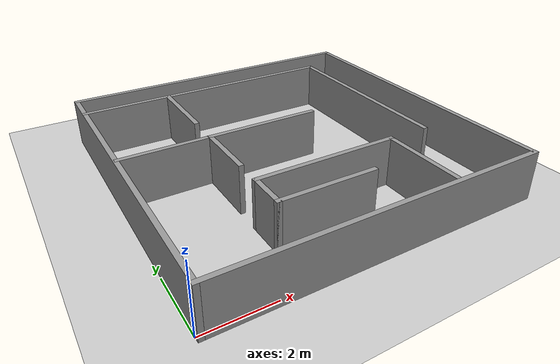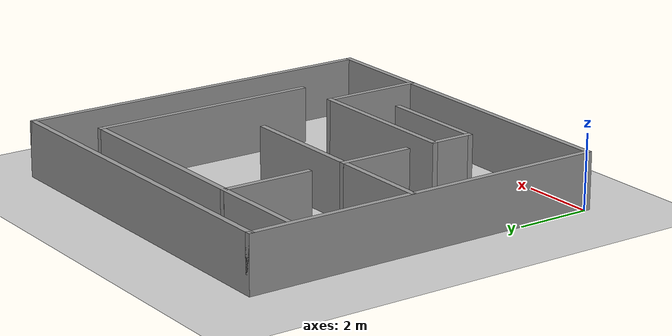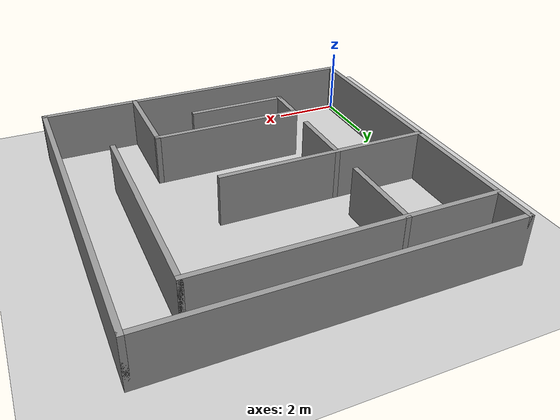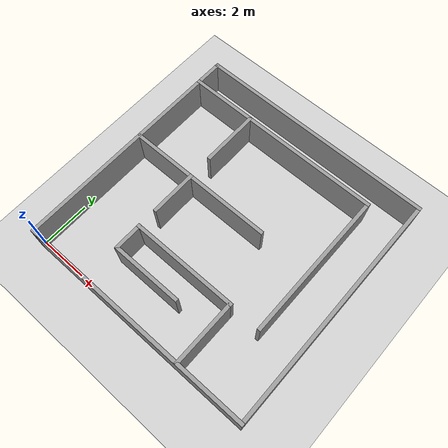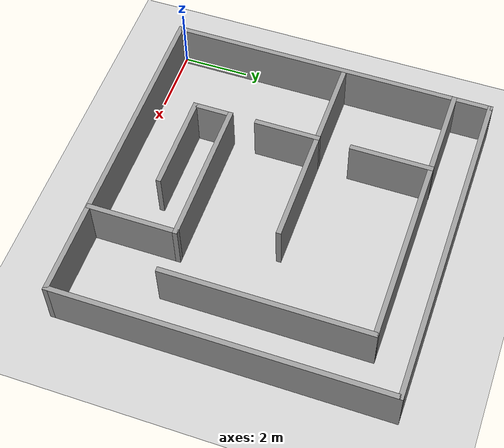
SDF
<?xml version="1.0"?>
<sdf version="1.6">
  <world name="default">

    <plugin
      filename="gz-sim-physics-system"
      name="gz::sim::systems::Physics">
    </plugin>
    <plugin
      filename="gz-sim-user-commands-system"
      name="gz::sim::systems::UserCommands">
    </plugin>
    <plugin
      filename="gz-sim-scene-broadcaster-system"
      name="gz::sim::systems::SceneBroadcaster">
    </plugin>
    <plugin
      filename="gz-sim-sensors-system"
      name="gz::sim::systems::Sensors">
      <render_engine>ogre2</render_engine>
    </plugin>
    <plugin
      filename="gz-sim-imu-system"
      name="gz::sim::systems::Imu">
    </plugin>
    <include>
      <uri>
        https://fuel.gazebosim.org/1.0/OpenRobotics/models/Ground Plane
      </uri>
    </include>

    <include>
      <uri>
        https://fuel.gazebosim.org/1.0/OpenRobotics/models/Sun
      </uri>
    </include>
    <gui fullscreen='0'>
      <camera name='user_camera'>
        <pose frame=''>0.319654 -0.235002 9.29441 0 1.5138 0.009599</pose>
        <view_controller>orbit</view_controller>
        <projection_type>perspective</projection_type>
      </camera>
      <plugin filename="MinimalScene" name="3D View">
        <gz-gui>
          <title>3D View</title>
          <property type="bool" key="showTitleBar">false</property>
          <property type="string" key="state">docked</property>
        </gz-gui>

        <engine>ogre2</engine>
        <scene>scene</scene>
        <ambient_light>0.4 0.4 0.4</ambient_light>
        <background_color>0.8 0.8 0.8</background_color>
        <camera_pose>0.319654 -0.235002 9.29441 0 1.5138 0.009599</camera_pose>
      </plugin>

      <plugin filename="EntityContextMenuPlugin" name="Entity context menu">
        <gz-gui>
          <property key="state" type="string">floating</property>
          <property key="width" type="double">5</property>
          <property key="height" type="double">5</property>
          <property key="showTitleBar" type="bool">false</property>
        </gz-gui>
      </plugin>
      <plugin filename="GzSceneManager" name="Scene Manager">
        <gz-gui>
          <property key="resizable" type="bool">false</property>
          <property key="width" type="double">5</property>
          <property key="height" type="double">5</property>
          <property key="state" type="string">floating</property>
          <property key="showTitleBar" type="bool">false</property>
        </gz-gui>
      </plugin>
      <plugin filename="InteractiveViewControl" name="Interactive view control">
        <gz-gui>
          <property key="resizable" type="bool">false</property>
          <property key="width" type="double">5</property>
          <property key="height" type="double">5</property>
          <property key="state" type="string">floating</property>
          <property key="showTitleBar" type="bool">false</property>
        </gz-gui>
      </plugin>
      <plugin filename="CameraTracking" name="Camera Tracking">
        <gz-gui>
          <property key="resizable" type="bool">false</property>
          <property key="width" type="double">5</property>
          <property key="height" type="double">5</property>
          <property key="state" type="string">floating</property>
          <property key="showTitleBar" type="bool">false</property>
        </gz-gui>
      </plugin>
      <plugin filename="MarkerManager" name="Marker manager">
        <gz-gui>
          <property key="resizable" type="bool">false</property>
          <property key="width" type="double">5</property>
          <property key="height" type="double">5</property>
          <property key="state" type="string">floating</property>
          <property key="showTitleBar" type="bool">false</property>
        </gz-gui>
      </plugin>
      <plugin filename="SelectEntities" name="Select Entities">
        <gz-gui>
          <property key="resizable" type="bool">false</property>
          <property key="width" type="double">5</property>
          <property key="height" type="double">5</property>
          <property key="state" type="string">floating</property>
          <property key="showTitleBar" type="bool">false</property>
        </gz-gui>
      </plugin>

      <plugin filename="Spawn" name="Spawn Entities">
        <gz-gui>
          <property key="resizable" type="bool">false</property>
          <property key="width" type="double">5</property>
          <property key="height" type="double">5</property>
          <property key="state" type="string">floating</property>
          <property key="showTitleBar" type="bool">false</property>
        </gz-gui>
      </plugin>

      <plugin filename="VisualizationCapabilities" name="Visualization Capabilities">
        <gz-gui>
          <property key="resizable" type="bool">false</property>
          <property key="width" type="double">5</property>
          <property key="height" type="double">5</property>
          <property key="state" type="string">floating</property>
          <property key="showTitleBar" type="bool">false</property>
        </gz-gui>
      </plugin>

      <!-- World control -->
      <plugin filename="WorldControl" name="World control">
        <gz-gui>
          <title>World control</title>
          <property type="bool" key="showTitleBar">false</property>
          <property type="bool" key="resizable">false</property>
          <property type="double" key="height">72</property>
          <property type="double" key="z">1</property>

          <property type="string" key="state">floating</property>
          <anchors target="3D View">
            <line own="left" target="left"/>
            <line own="bottom" target="bottom"/>
          </anchors>
        </gz-gui>

        <play_pause>true</play_pause>
        <step>true</step>
        <start_paused>true</start_paused>
        <use_event>true</use_event>

      </plugin>

      <!-- World statistics -->
      <plugin filename="WorldStats" name="World stats">
        <gz-gui>
          <title>World stats</title>
          <property type="bool" key="showTitleBar">false</property>
          <property type="bool" key="resizable">false</property>
          <property type="double" key="height">110</property>
          <property type="double" key="width">290</property>
          <property type="double" key="z">1</property>

          <property type="string" key="state">floating</property>
          <anchors target="3D View">
            <line own="right" target="right"/>
            <line own="bottom" target="bottom"/>
          </anchors>
        </gz-gui>

        <sim_time>true</sim_time>
        <real_time>true</real_time>
        <real_time_factor>true</real_time_factor>
        <iterations>true</iterations>
      </plugin>

      <!-- Insert simple shapes -->
      <plugin filename="Shapes" name="Shapes">
        <gz-gui>
          <property key="resizable" type="bool">false</property>
          <property key="x" type="double">0</property>
          <property key="y" type="double">0</property>
          <property key="width" type="double">250</property>
          <property key="height" type="double">50</property>
          <property key="state" type="string">floating</property>
          <property key="showTitleBar" type="bool">false</property>
          <property key="cardBackground" type="string">#666666</property>
        </gz-gui>
      </plugin>

      <!-- Insert lights -->
      <plugin filename="Lights" name="Lights">
        <gz-gui>
          <property key="resizable" type="bool">false</property>
          <property key="x" type="double">250</property>
          <property key="y" type="double">0</property>
          <property key="width" type="double">150</property>
          <property key="height" type="double">50</property>
          <property key="state" type="string">floating</property>
          <property key="showTitleBar" type="bool">false</property>
          <property key="cardBackground" type="string">#666666</property>
        </gz-gui>
      </plugin>

      <!-- Translate / rotate -->
      <plugin filename="TransformControl" name="Transform control">
        <gz-gui>
          <property key="resizable" type="bool">false</property>
          <property key="x" type="double">0</property>
          <property key="y" type="double">50</property>
          <property key="width" type="double">250</property>
          <property key="height" type="double">50</property>
          <property key="state" type="string">floating</property>
          <property key="showTitleBar" type="bool">false</property>
          <property key="cardBackground" type="string">#777777</property>
        </gz-gui>
      </plugin>

      <!-- Screenshot -->
      <plugin filename="Screenshot" name="Screenshot">
        <gz-gui>
          <property key="resizable" type="bool">false</property>
          <property key="x" type="double">250</property>
          <property key="y" type="double">50</property>
          <property key="width" type="double">50</property>
          <property key="height" type="double">50</property>
          <property key="state" type="string">floating</property>
          <property key="showTitleBar" type="bool">false</property>
          <property key="cardBackground" type="string">#777777</property>
        </gz-gui>
      </plugin>

      <!-- Copy/Paste -->
      <plugin filename="CopyPaste" name="CopyPaste">
        <gz-gui>
          <property key="resizable" type="bool">false</property>
          <property key="x" type="double">300</property>
          <property key="y" type="double">50</property>
          <property key="width" type="double">100</property>
          <property key="height" type="double">50</property>
          <property key="state" type="string">floating</property>
          <property key="showTitleBar" type="bool">false</property>
          <property key="cardBackground" type="string">#777777</property>
        </gz-gui>
      </plugin>

      <!-- Inspector -->
      <plugin filename="ComponentInspector" name="Component inspector">
        <gz-gui>
          <property type="bool" key="showTitleBar">false</property>
          <property type="string" key="state">docked</property>
        </gz-gui>
      </plugin>

      <!-- Entity tree -->
      <plugin filename="EntityTree" name="Entity tree">
        <gz-gui>
          <property type="bool" key="showTitleBar">false</property>
          <property type="string" key="state">docked</property>
        </gz-gui>
      </plugin>
    </gui>

    <physics type="ode">
      <real_time_update_rate>1000.0</real_time_update_rate>
      <max_step_size>0.001</max_step_size>
      <real_time_factor>1</real_time_factor>
      <ode>
        <solver>
          <type>quick</type>
          <iters>150</iters>
          <precon_iters>0</precon_iters>
          <sor>1.400000</sor>
          <use_dynamic_moi_rescaling>1</use_dynamic_moi_rescaling>
        </solver>
        <constraints>
          <cfm>0.00001</cfm>
          <erp>0.2</erp>
          <contact_max_correcting_vel>2000.000000</contact_max_correcting_vel>
          <contact_surface_layer>0.01000</contact_surface_layer>
        </constraints>
      </ode>
    </physics>

    <model name='RoomWorld'>
    <pose>5.0 5.0 0 0 -0 0</pose>
    <link name='Wall_11'>
      <collision name='Wall_11_Collision'>
        <geometry>
          <box>
            <size>8.5 0.15 1.5</size>
          </box>
        </geometry>
        <pose>0 0 0.75 0 -0 0</pose>
      </collision>
      <visual name='Wall_11_Visual'>
        <pose>0 0 0.75 0 -0 0</pose>
        <geometry>
          <box>
            <size>8.5 0.15 1.5</size>
          </box>
        </geometry>
        <material>
          <script>
            <uri>file://media/materials/scripts/gazebo.material</uri>
            <name>Gazebo/Grey</name>
          </script>
          <ambient>1 1 1 1</ambient>
        </material>
        <meta>
          <layer>0</layer>
        </meta>
      </visual>
      <pose>-0.75 3.66383 0 0 -0 0</pose>
    </link>
    <link name='Wall_12'>
      <collision name='Wall_12_Collision'>
        <geometry>
          <box>
            <size>6.25 0.15 1.5</size>
          </box>
        </geometry>
        <pose>0 0 0.75 0 -0 0</pose>
      </collision>
      <visual name='Wall_12_Visual'>
        <pose>0 0 0.75 0 -0 0</pose>
        <geometry>
          <box>
            <size>6.25 0.15 1.5</size>
          </box>
        </geometry>
        <material>
          <script>
            <uri>file://media/materials/scripts/gazebo.material</uri>
            <name>Gazebo/Grey</name>
          </script>
          <ambient>1 1 1 1</ambient>
        </material>
        <meta>
          <layer>0</layer>
        </meta>
      </visual>
      <pose>3.425 0.61383 0 0 -0 -1.5708</pose>
    </link>
    <link name='Wall_14'>
      <collision name='Wall_14_Collision'>
        <geometry>
          <box>
            <size>2.75 0.15 1.5</size>
          </box>
        </geometry>
        <pose>0 0 0.75 0 -0 0</pose>
      </collision>
      <visual name='Wall_14_Visual'>
        <pose>0 0 0.75 0 -0 0</pose>
        <geometry>
          <box>
            <size>2.75 0.15 1.5</size>
          </box>
        </geometry>
        <material>
          <script>
            <uri>file://media/materials/scripts/gazebo.material</uri>
            <name>Gazebo/Grey</name>
          </script>
          <ambient>1 1 1 1</ambient>
        </material>
        <meta>
          <layer>0</layer>
        </meta>
      </visual>
      <pose>2.13606 -3.76015 0 0 -0 1.5708</pose>
    </link>
    <link name='Wall_15'>
      <collision name='Wall_15_Collision'>
        <geometry>
          <box>
            <size>4.5 0.15 1.5</size>
          </box>
        </geometry>
        <pose>0 0 0.75 0 -0 0</pose>
      </collision>
      <visual name='Wall_15_Visual'>
        <pose>0 0 0.75 0 -0 0</pose>
        <geometry>
          <box>
            <size>4.5 0.15 1.5</size>
          </box>
        </geometry>
        <material>
          <script>
            <uri>file://media/materials/scripts/gazebo.material</uri>
            <name>Gazebo/Grey</name>
          </script>
          <ambient>1 1 1 1</ambient>
        </material>
        <meta>
          <layer>0</layer>
        </meta>
      </visual>
      <pose>-0.038943 -2.46015 0 0 -0 3.14159</pose>
    </link>
        <link name='Wall_16'>
      <collision name='Wall_16_Collision'>
        <geometry>
          <box>
            <size>1.25 0.15 1.5</size>
          </box>
        </geometry>
        <pose>0 0 0.75 0 -0 0</pose>
      </collision>
      <visual name='Wall_16_Visual'>
        <pose>0 0 0.75 0 -0 0</pose>
        <geometry>
          <box>
            <size>1.25 0.15 1.5</size>
          </box>
        </geometry>
        <material>
          <script>
            <uri>file://media/materials/scripts/gazebo.material</uri>
            <name>Gazebo/Grey</name>
          </script>
          <ambient>1 1 1 1</ambient>
        </material>
        <meta>
          <layer>0</layer>
        </meta>
      </visual>
      <pose>-2.21394 -3.01015 0 0 -0 -1.5708</pose>
    </link>
    <link name='Wall_17'>
      <collision name='Wall_17_Collision'>
        <geometry>
          <box>
            <size>3 0.15 1.5</size>
          </box>
        </geometry>
        <pose>0 0 0.75 0 -0 0</pose>
      </collision>
      <visual name='Wall_17_Visual'>
        <pose>0 0 0.75 0 -0 0</pose>
        <geometry>
          <box>
            <size>3 0.15 1.5</size>
          </box>
        </geometry>
        <material>
          <script>
            <uri>file://media/materials/scripts/gazebo.material</uri>
            <name>Gazebo/Grey</name>
          </script>
          <ambient>1 1 1 1</ambient>
        </material>
        <meta>
          <layer>0</layer>
        </meta>
      </visual>
      <pose>-0.788943 -3.56015 0 0 -0 0</pose>
    </link>
    <link name='Wall_19'>
      <collision name='Wall_19_Collision'>
        <geometry>
          <box>
            <size>6.25 0.15 1.5</size>
          </box>
        </geometry>
        <pose>0 0 0.75 0 -0 0</pose>
      </collision>
      <visual name='Wall_19_Visual'>
        <pose>0 0 0.75 0 -0 0</pose>
        <geometry>
          <box>
            <size>6.25 0.15 1.5</size>
          </box>
        </geometry>
        <material>
          <script>
            <uri>file://media/materials/scripts/gazebo.material</uri>
            <name>Gazebo/Grey</name>
          </script>
          <ambient>1 1 1 1</ambient>
        </material>
        <meta>
          <layer>0</layer>
        </meta>
      </visual>
      <pose>-1.84038 0.247704 0 0 -0 0</pose>
    </link>
    <link name='Wall_21'>
      <collision name='Wall_21_Collision'>
        <geometry>
          <box>
            <size>2 0.15 1.5</size>
          </box>
        </geometry>
        <pose>0 0 0.75 0 -0 0</pose>
      </collision>
      <visual name='Wall_21_Visual'>
        <pose>0 0 0.75 0 -0 0</pose>
        <geometry>
          <box>
            <size>2 0.15 1.5</size>
          </box>
        </geometry>
        <material>
          <script>
            <uri>file://media/materials/scripts/gazebo.material</uri>
            <name>Gazebo/Grey</name>
          </script>
          <ambient>1 1 1 1</ambient>
        </material>
        <meta>
          <layer>0</layer>
        </meta>
      </visual>
      <pose>-2.21365 -0.677039 0 0 -0 -1.5708</pose>
    </link>

    <link name='Wall_23'>
      <collision name='Wall_23_Collision'>
        <geometry>
          <box>
            <size>2.5 0.15 1.5</size>
          </box>
        </geometry>
        <pose>0 0 0.75 0 -0 0</pose>
      </collision>
      <visual name='Wall_23_Visual'>
        <pose>0 0 0.75 0 -0 0</pose>
        <geometry>
          <box>
            <size>2.5 0.15 1.5</size>
          </box>
        </geometry>
        <material>
          <script>
            <uri>file://media/materials/scripts/gazebo.material</uri>
            <name>Gazebo/Grey</name>
          </script>
          <ambient>1 1 1 1</ambient>
        </material>
        <meta>
          <layer>0</layer>
        </meta>
      </visual>
      <pose>-2.21805 2.49059 0 0 -0 -1.5708</pose>
    </link>
    <link name='Wall_3'>
      <collision name='Wall_3_Collision'>
        <geometry>
          <box>
            <size>10 0.15 1.5</size>
          </box>
        </geometry>
        <pose>0 0 0.75 0 -0 0</pose>
      </collision>
      <visual name='Wall_3_Visual'>
        <pose>0 0 0.75 0 -0 0</pose>
        <geometry>
          <box>
            <size>10 0.15 1.5</size>
          </box>
        </geometry>
        <material>
          <script>
            <uri>file://media/materials/scripts/gazebo.material</uri>
            <name>Gazebo/Grey</name>
          </script>
          <ambient>1 1 1 1</ambient>
        </material>
        <meta>
          <layer>0</layer>
        </meta>
      </visual>
      <pose>0 4.76383 0 0 -0 0</pose>
    </link>
    <link name='Wall_6'>
      <collision name='Wall_6_Collision'>
        <geometry>
          <box>
            <size>10 0.15 1.5</size>
          </box>
        </geometry>
        <pose>0 0 0.75 0 -0 0</pose>
      </collision>
      <visual name='Wall_6_Visual'>
        <pose>0 0 0.75 0 -0 0</pose>
        <geometry>
          <box>
            <size>10 0.15 1.5</size>
          </box>
        </geometry>
        <material>
          <script>
            <uri>file://media/materials/scripts/gazebo.material</uri>
            <name>Gazebo/Grey</name>
          </script>
          <ambient>1 1 1 1</ambient>
        </material>
        <meta>
          <layer>0</layer>
        </meta>
      </visual>
      <pose>4.925 -0.16117 0 0 -0 -1.5708</pose>
    </link>
    <link name='Wall_7'>
      <collision name='Wall_7_Collision'>
        <geometry>
          <box>
            <size>10 0.15 1.5</size>
          </box>
        </geometry>
        <pose>0 0 0.75 0 -0 0</pose>
      </collision>
      <visual name='Wall_7_Visual'>
        <pose>0 0 0.75 0 -0 0</pose>
        <geometry>
          <box>
            <size>10 0.15 1.5</size>
          </box>
        </geometry>
        <material>
          <script>
            <uri>file://media/materials/scripts/gazebo.material</uri>
            <name>Gazebo/Grey</name>
          </script>
          <ambient>1 1 1 1</ambient>
        </material>
        <meta>
          <layer>0</layer>
        </meta>
      </visual>
      <pose>0 -5.08617 0 0 -0 3.14159</pose>
    </link>
    <link name='Wall_8'>
      <collision name='Wall_8_Collision'>
        <geometry>
          <box>
            <size>10 0.15 1.5</size>
          </box>
        </geometry>
        <pose>0 0 0.75 0 -0 0</pose>
      </collision>
      <visual name='Wall_8_Visual'>
        <pose>0 0 0.75 0 -0 0</pose>
        <geometry>
          <box>
            <size>10 0.15 1.5</size>
          </box>
        </geometry>
        <material>
          <script>
            <uri>file://media/materials/scripts/gazebo.material</uri>
            <name>Gazebo/Grey</name>
          </script>
          <ambient>1 1 1 1</ambient>
        </material>
        <meta>
          <layer>0</layer>
        </meta>
      </visual>
      <pose>-4.925 -0.16117 0 0 -0 1.5708</pose>
    </link>

      <static>1</static>
    </model>
  </world>
</sdf>
